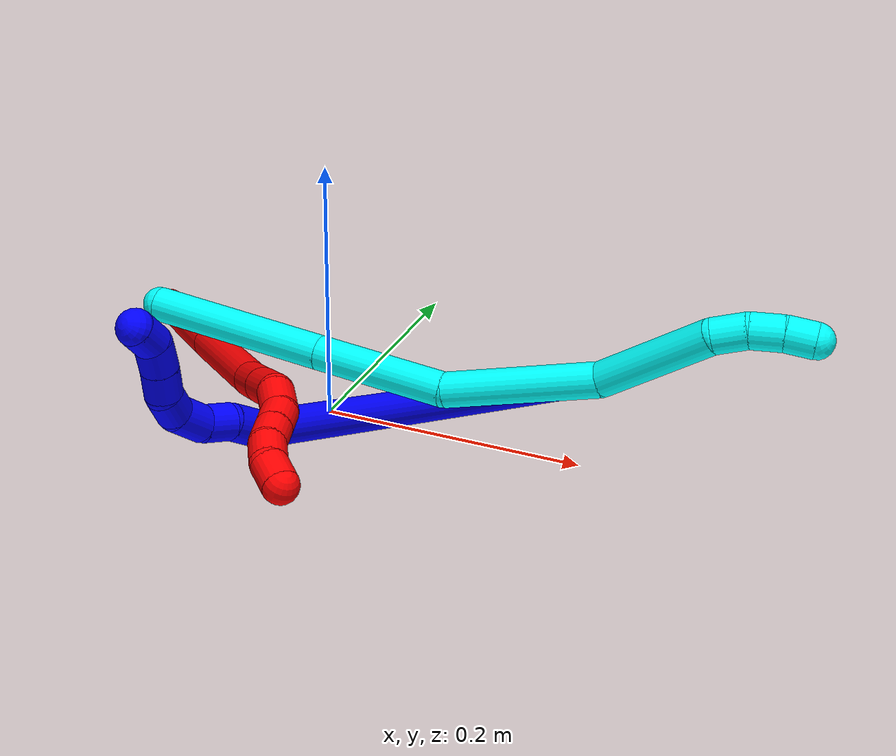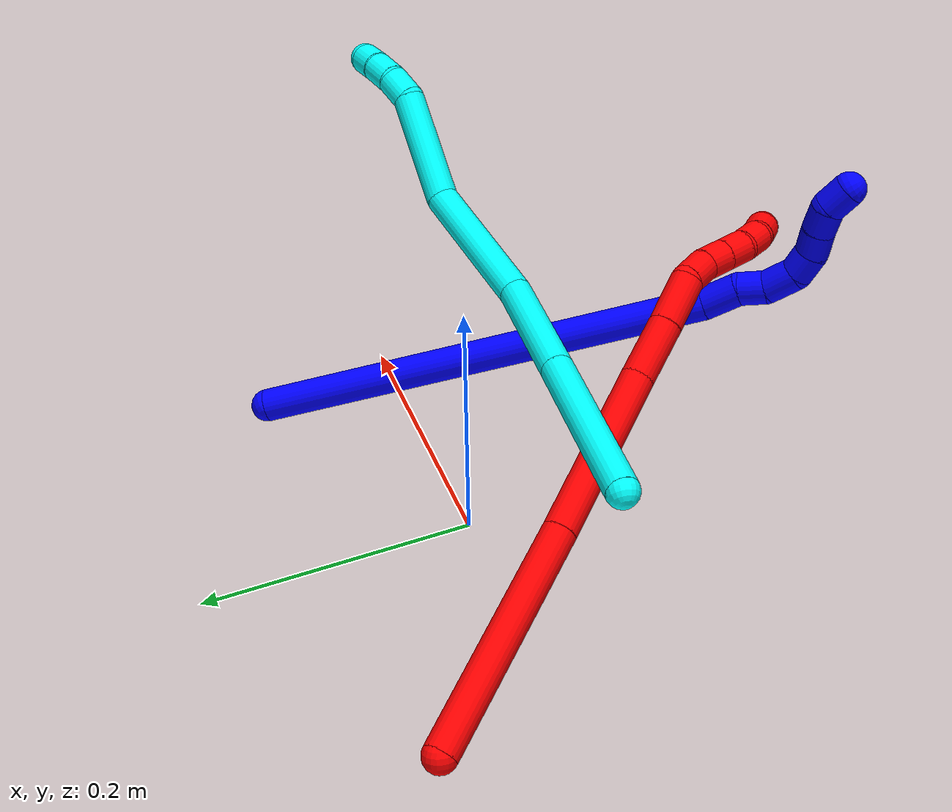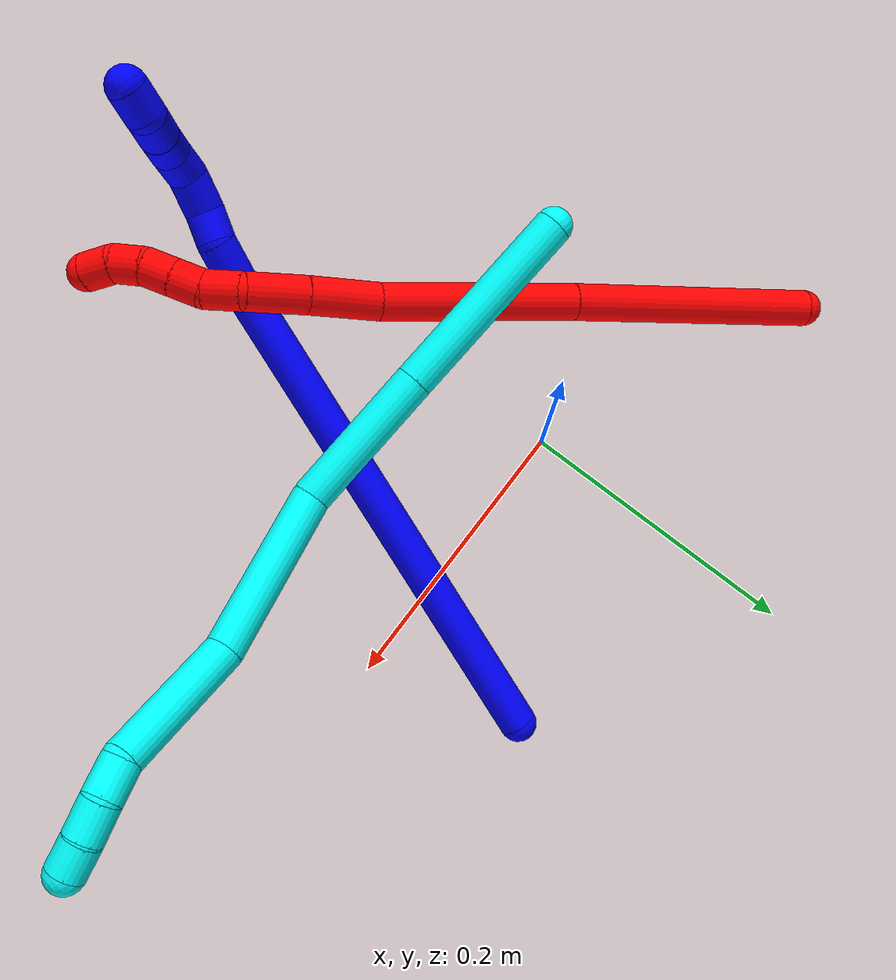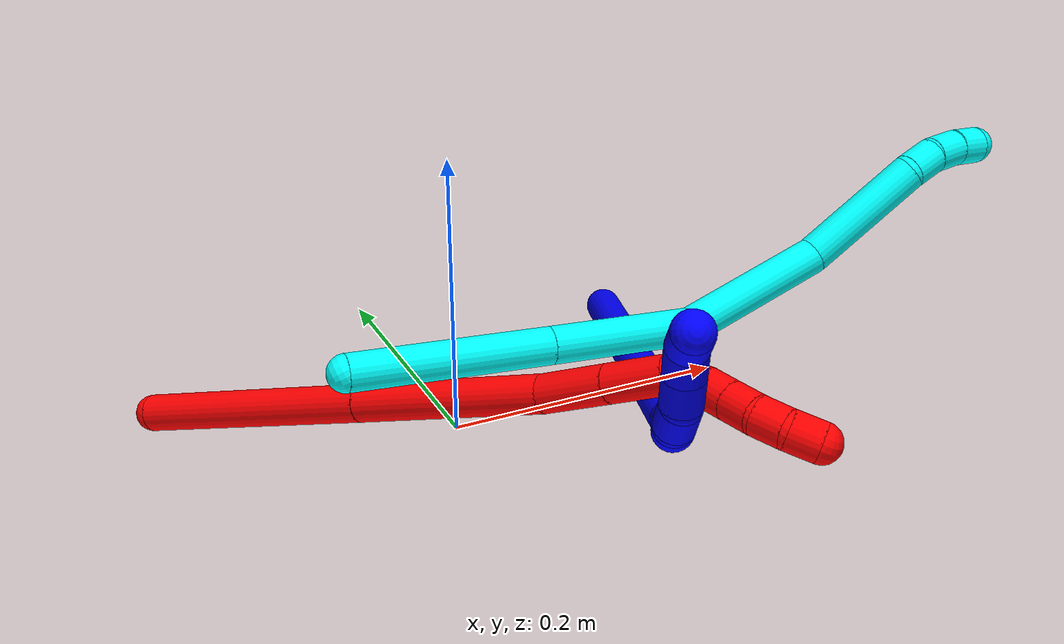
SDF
<sdf version="1.7">
 <world name="default">
  <plugin name="TubeGeneratorPlugin" filename="libtube_generator_plugin.so"/>
  <model name="photoneo_s_sensor">
   <static>1</static>
   <pose>0 0 2 1.57079 1.57079 3.14159</pose>
   <link name="link">
    <inertial><mass>0.1</mass></inertial>
    <sensor name="sensor" type="depth">
     <update_rate>30</update_rate>
     <camera>
      <horizontal_fov>1.22</horizontal_fov>
      <image><width>1920</width><height>1200</height><format>B8G8R8</format></image>
      <clip><near>0.1</near><far>4</far></clip>
      <depth_camera><output>points</output></depth_camera>
     </camera>
     <plugin name="camera_plugin" filename="libgazebo_ros_depth_camera.so">
      <baseline>0.2</baseline>
      <alwaysOn>1</alwaysOn>
      <updateRate>0.0</updateRate>
      <cameraName>camera_ir</cameraName>
      <imageTopicName>/camera/color/image_raw</imageTopicName>
      <cameraInfoTopicName>/camera/color/camera_info</cameraInfoTopicName>
      <depthImageTopicName>/camera/depth/image_raw</depthImageTopicName>
      <depthImageCameraInfoTopicName>/camera/depth/camera_info</depthImageCameraInfoTopicName>
      <pointCloudTopicName>/camera/depth/points</pointCloudTopicName>
      <frameName>fr_optical</frameName>
      <pointCloudCutoff>0.1</pointCloudCutoff>
      <pointCloudCutoffMax>2.0</pointCloudCutoffMax>
      <distortionK1>0</distortionK1>
      <distortionK2>0</distortionK2>
      <distortionK3>0</distortionK3>
      <distortionT1>0</distortionT1>
      <distortionT2>0</distortionT2>
      <CxPrime>0</CxPrime>
      <Cx>0</Cx>
      <Cy>0</Cy>
      <focalLength>0</focalLength>
      <hackBaseline>0</hackBaseline>
     </plugin>
    </sensor>
   </link>
  </model>
  <gravity>0 0 -9.8</gravity>
  <magnetic_field>6e-06 2.3e-05 -4.2e-05</magnetic_field>
  <atmosphere type="adiabatic"/>
  <physics name="default_physics" default="0" type="ode">
   <max_step_size>0.003</max_step_size>
   <real_time_factor>1</real_time_factor>
   <real_time_update_rate>1000</real_time_update_rate>
   <max_contacts>10000</max_contacts>
   <ode>
    <solver>
     <type>quick</type>
     <iters>100</iters>
     <sor>1.3</sor>
     <use_dynamic_moi_rescaling>0</use_dynamic_moi_rescaling>
    </solver>
    <constraints>
     <contact_max_correcting_vel>0</contact_max_correcting_vel>
     <contact_surface_layer>0.001</contact_surface_layer>
     <cfm>0</cfm>
     <erp>0.2</erp>
    </constraints>
   </ode>
  </physics>
  <scene><ambient>0.4 0.4 0.4 1</ambient><background>0.7 0.7 0.7 1</background><shadows>0</shadows></scene>
  <audio><device>default</device></audio>
  <spherical_coordinates>
   <surface_model>EARTH_WGS84</surface_model>
   <latitude_deg>0</latitude_deg>
   <longitude_deg>0</longitude_deg>
   <elevation>0</elevation>
   <heading_deg>0</heading_deg>
  </spherical_coordinates>
  <model name="bin">
   <static>1</static>
   <link name="bottom">
    <collision name="collision-bottom">
     <pose>0 0 -0.01 0 -0 0</pose>
     <geometry><box><size>0.8 0.6 0.02</size></box></geometry>
     <surface>
      <friction><ode><mu>100</mu><mu2>100</mu2></ode></friction>
      <contact><collide_bitmask>65535</collide_bitmask></contact>
     </surface>
    </collision>
   </link>
   <link name="west_wall">
    <collision name="collision-west_wall">
     <pose>-0.41 0 0.1 0 -0 0</pose>
     <geometry><box><size>0.02 0.6 0.2</size></box></geometry>
     <surface>
      <friction><ode><mu>100</mu><mu2>100</mu2></ode></friction>
      <contact><collide_bitmask>65535</collide_bitmask></contact>
     </surface>
    </collision>
   </link>
   <link name="east_wall">
    <collision name="collision-east_wall">
     <pose>0.41 0 0.1 0 -0 0</pose>
     <geometry><box><size>0.02 0.6 0.2</size></box></geometry>
     <surface>
      <friction><ode><mu>100</mu><mu2>100</mu2></ode></friction>
      <contact><collide_bitmask>65535</collide_bitmask></contact>
     </surface>
    </collision>
   </link>
   <link name="south_wall">
    <collision name="collision-south_wall">
     <pose>0 -0.31 0.1 0 -0 0</pose>
     <geometry><box><size>0.8 0.02 0.2</size></box></geometry>
     <surface>
      <friction><ode><mu>100</mu><mu2>100</mu2></ode></friction>
      <contact><collide_bitmask>65535</collide_bitmask></contact>
     </surface>
    </collision>
   </link>
   <link name="north_wall">
    <collision name="collision-north_wall">
     <pose>0 0.31 0.1 0 -0 0</pose>
     <geometry><box><size>0.8 0.02 0.2</size></box></geometry>
     <surface>
      <friction><ode><mu>100</mu><mu2>100</mu2></ode></friction>
      <contact><collide_bitmask>65535</collide_bitmask></contact>
     </surface>
    </collision>
   </link>
  </model>
  <model name="1">
   <static>0</static>
   <link name="1">
    <collision name="collision-cylinder-e_1_1_4">
     <pose>-0.015938 -0.052888 0.163803 0.312306 -0.092331 -0.014546</pose>
     <geometry><cylinder><radius>0.0125</radius><length>0.345732</length></cylinder></geometry>
     <surface>
      <friction><ode><mu>1.16</mu><mu2>1.16</mu2><slip1>0</slip1><slip2>0</slip2></ode></friction>
      <contact><ode><kp>1e+06</kp><kd>1</kd><max_vel>0</max_vel><min_depth>0.001</min_depth></ode></contact>
     </surface>
    </collision>
    <visual name="visual-cylinder-e_1_1_4">
     <pose>-0.015938 -0.052888 0.163803 0.312306 -0.092331 -0.014546</pose>
     <geometry><cylinder><radius>0.0125</radius><length>0.345732</length></cylinder></geometry>
     <material><ambient>0 0 1 1</ambient></material>
    </visual>
    <collision name="collision-cylinder-e_2_4_5">
     <pose>-0.033378 -0.106164 0.341908 0.027149 -0.104553 -0.001421</pose>
     <geometry><cylinder><radius>0.0125</radius><length>0.028771</length></cylinder></geometry>
     <surface>
      <friction><ode><mu>1.16</mu><mu2>1.16</mu2><slip1>0</slip1><slip2>0</slip2></ode></friction>
      <contact><ode><kp>1e+06</kp><kd>1</kd><max_vel>0</max_vel><min_depth>0.001</min_depth></ode></contact>
     </surface>
    </collision>
    <visual name="visual-cylinder-e_2_4_5">
     <pose>-0.033378 -0.106164 0.341908 0.027149 -0.104553 -0.001421</pose>
     <geometry><cylinder><radius>0.0125</radius><length>0.028771</length></cylinder></geometry>
     <material><ambient>0 0 1 1</ambient></material>
    </visual>
    <collision name="collision-cylinder-e_3_5_6">
     <pose>-0.038005 -0.109638 0.365513 0.320353 -0.308674 -0.050259</pose>
     <geometry><cylinder><radius>0.0125</radius><length>0.020576</length></cylinder></geometry>
     <surface>
      <friction><ode><mu>1.16</mu><mu2>1.16</mu2><slip1>0</slip1><slip2>0</slip2></ode></friction>
      <contact><ode><kp>1e+06</kp><kd>1</kd><max_vel>0</max_vel><min_depth>0.001</min_depth></ode></contact>
     </surface>
    </collision>
    <visual name="visual-cylinder-e_3_5_6">
     <pose>-0.038005 -0.109638 0.365513 0.320353 -0.308674 -0.050259</pose>
     <geometry><cylinder><radius>0.0125</radius><length>0.020576</length></cylinder></geometry>
     <material><ambient>0 0 1 1</ambient></material>
    </visual>
    <collision name="collision-cylinder-e_4_6_7">
     <pose>-0.042749 -0.111731 0.386951 -0.081725 -0.132221 0.005414</pose>
     <geometry><cylinder><radius>0.0125</radius><length>0.024567</length></cylinder></geometry>
     <surface>
      <friction><ode><mu>1.16</mu><mu2>1.16</mu2><slip1>0</slip1><slip2>0</slip2></ode></friction>
      <contact><ode><kp>1e+06</kp><kd>1</kd><max_vel>0</max_vel><min_depth>0.001</min_depth></ode></contact>
     </surface>
    </collision>
    <visual name="visual-cylinder-e_4_6_7">
     <pose>-0.042749 -0.111731 0.386951 -0.081725 -0.132221 0.005414</pose>
     <geometry><cylinder><radius>0.0125</radius><length>0.024567</length></cylinder></geometry>
     <material><ambient>0 0 1 1</ambient></material>
    </visual>
    <collision name="collision-cylinder-e_5_7_8">
     <pose>-0.04298 -0.106324 0.408077 -0.456311 0.137805 -0.032046</pose>
     <geometry><cylinder><radius>0.0125</radius><length>0.02022</length></cylinder></geometry>
     <surface>
      <friction><ode><mu>1.16</mu><mu2>1.16</mu2><slip1>0</slip1><slip2>0</slip2></ode></friction>
      <contact><ode><kp>1e+06</kp><kd>1</kd><max_vel>0</max_vel><min_depth>0.001</min_depth></ode></contact>
     </surface>
    </collision>
    <visual name="visual-cylinder-e_5_7_8">
     <pose>-0.04298 -0.106324 0.408077 -0.456311 0.137805 -0.032046</pose>
     <geometry><cylinder><radius>0.0125</radius><length>0.02022</length></cylinder></geometry>
     <material><ambient>0 0 1 1</ambient></material>
    </visual>
    <collision name="collision-cylinder-e_6_8_9">
     <pose>-0.040059 -0.094666 0.423818 -0.820737 0.153482 -0.066882</pose>
     <geometry><cylinder><radius>0.0125</radius><length>0.020043</length></cylinder></geometry>
     <surface>
      <friction><ode><mu>1.16</mu><mu2>1.16</mu2><slip1>0</slip1><slip2>0</slip2></ode></friction>
      <contact><ode><kp>1e+06</kp><kd>1</kd><max_vel>0</max_vel><min_depth>0.001</min_depth></ode></contact>
     </surface>
    </collision>
    <visual name="visual-cylinder-e_6_8_9">
     <pose>-0.040059 -0.094666 0.423818 -0.820737 0.153482 -0.066882</pose>
     <geometry><cylinder><radius>0.0125</radius><length>0.020043</length></cylinder></geometry>
     <material><ambient>0 0 1 1</ambient></material>
    </visual>
    <collision name="collision-cylinder-e_7_9_10">
     <pose>-0.037329 -0.080643 0.437836 -0.750412 0.11996 -0.047296</pose>
     <geometry><cylinder><radius>0.0125</radius><length>0.020017</length></cylinder></geometry>
     <surface>
      <friction><ode><mu>1.16</mu><mu2>1.16</mu2><slip1>0</slip1><slip2>0</slip2></ode></friction>
      <contact><ode><kp>1e+06</kp><kd>1</kd><max_vel>0</max_vel><min_depth>0.001</min_depth></ode></contact>
     </surface>
    </collision>
    <visual name="visual-cylinder-e_7_9_10">
     <pose>-0.037329 -0.080643 0.437836 -0.750412 0.11996 -0.047296</pose>
     <geometry><cylinder><radius>0.0125</radius><length>0.020017</length></cylinder></geometry>
     <material><ambient>0 0 1 1</ambient></material>
    </visual>
    <collision name="collision-cylinder-e_8_10_2">
     <pose>-0.035733 -0.071303 0.4548 -0.258547 0.039721 -0.005164</pose>
     <geometry><cylinder><radius>0.0125</radius><length>0.020074</length></cylinder></geometry>
     <surface>
      <friction><ode><mu>1.16</mu><mu2>1.16</mu2><slip1>0</slip1><slip2>0</slip2></ode></friction>
      <contact><ode><kp>1e+06</kp><kd>1</kd><max_vel>0</max_vel><min_depth>0.001</min_depth></ode></contact>
     </surface>
    </collision>
    <visual name="visual-cylinder-e_8_10_2">
     <pose>-0.035733 -0.071303 0.4548 -0.258547 0.039721 -0.005164</pose>
     <geometry><cylinder><radius>0.0125</radius><length>0.020074</length></cylinder></geometry>
     <material><ambient>0 0 1 1</ambient></material>
    </visual>
    <collision name="collision-sphere-2">
     <pose>-0.035334 -0.068739 0.464496 0 -0 0</pose>
     <geometry><sphere><radius>0.0125</radius></sphere></geometry>
     <surface>
      <friction><ode><mu>1.16</mu><mu2>1.16</mu2><slip1>0</slip1><slip2>0</slip2></ode></friction>
      <contact><ode><kp>1e+06</kp><kd>1</kd><max_vel>0</max_vel><min_depth>0.001</min_depth></ode></contact>
     </surface>
    </collision>
    <visual name="visual-sphere-2">
     <pose>-0.035334 -0.068739 0.464496 0 -0 0</pose>
     <geometry><sphere><radius>0.0125</radius></sphere></geometry>
     <material><ambient>0 0 1 1</ambient></material>
    </visual>
    <collision name="collision-sphere-10">
     <pose>-0.036131 -0.073867 0.445104 0 -0 0</pose>
     <geometry><sphere><radius>0.0125</radius></sphere></geometry>
     <surface>
      <friction><ode><mu>1.16</mu><mu2>1.16</mu2><slip1>0</slip1><slip2>0</slip2></ode></friction>
      <contact><ode><kp>1e+06</kp><kd>1</kd><max_vel>0</max_vel><min_depth>0.001</min_depth></ode></contact>
     </surface>
    </collision>
    <visual name="visual-sphere-10">
     <pose>-0.036131 -0.073867 0.445104 0 -0 0</pose>
     <geometry><sphere><radius>0.0125</radius></sphere></geometry>
     <material><ambient>0 0 1 1</ambient></material>
    </visual>
    <collision name="collision-sphere-9">
     <pose>-0.038527 -0.087419 0.430569 0 -0 0</pose>
     <geometry><sphere><radius>0.0125</radius></sphere></geometry>
     <surface>
      <friction><ode><mu>1.16</mu><mu2>1.16</mu2><slip1>0</slip1><slip2>0</slip2></ode></friction>
      <contact><ode><kp>1e+06</kp><kd>1</kd><max_vel>0</max_vel><min_depth>0.001</min_depth></ode></contact>
     </surface>
    </collision>
    <visual name="visual-sphere-9">
     <pose>-0.038527 -0.087419 0.430569 0 -0 0</pose>
     <geometry><sphere><radius>0.0125</radius></sphere></geometry>
     <material><ambient>0 0 1 1</ambient></material>
    </visual>
    <collision name="collision-sphere-4">
     <pose>-0.031877 -0.105775 0.327607 0 -0 0</pose>
     <geometry><sphere><radius>0.0125</radius></sphere></geometry>
     <surface>
      <friction><ode><mu>1.16</mu><mu2>1.16</mu2><slip1>0</slip1><slip2>0</slip2></ode></friction>
      <contact><ode><kp>1e+06</kp><kd>1</kd><max_vel>0</max_vel><min_depth>0.001</min_depth></ode></contact>
     </surface>
    </collision>
    <visual name="visual-sphere-4">
     <pose>-0.031877 -0.105775 0.327607 0 -0 0</pose>
     <geometry><sphere><radius>0.0125</radius></sphere></geometry>
     <material><ambient>0 0 1 1</ambient></material>
    </visual>
    <collision name="collision-sphere-1">
     <geometry><sphere><radius>0.0125</radius></sphere></geometry>
     <surface>
      <friction><ode><mu>1.16</mu><mu2>1.16</mu2><slip1>0</slip1><slip2>0</slip2></ode></friction>
      <contact><ode><kp>1e+06</kp><kd>1</kd><max_vel>0</max_vel><min_depth>0.001</min_depth></ode></contact>
     </surface>
    </collision>
    <visual name="visual-sphere-1">
     <geometry><sphere><radius>0.0125</radius></sphere></geometry>
     <material><ambient>0 0 1 1</ambient></material>
    </visual>
    <collision name="collision-sphere-8">
     <pose>-0.041591 -0.101912 0.417066 0 -0 0</pose>
     <geometry><sphere><radius>0.0125</radius></sphere></geometry>
     <surface>
      <friction><ode><mu>1.16</mu><mu2>1.16</mu2><slip1>0</slip1><slip2>0</slip2></ode></friction>
      <contact><ode><kp>1e+06</kp><kd>1</kd><max_vel>0</max_vel><min_depth>0.001</min_depth></ode></contact>
     </surface>
    </collision>
    <visual name="visual-sphere-8">
     <pose>-0.041591 -0.101912 0.417066 0 -0 0</pose>
     <geometry><sphere><radius>0.0125</radius></sphere></geometry>
     <material><ambient>0 0 1 1</ambient></material>
    </visual>
    <collision name="collision-sphere-5">
     <pose>-0.034879 -0.106552 0.35621 0 -0 0</pose>
     <geometry><sphere><radius>0.0125</radius></sphere></geometry>
     <surface>
      <friction><ode><mu>1.16</mu><mu2>1.16</mu2><slip1>0</slip1><slip2>0</slip2></ode></friction>
      <contact><ode><kp>1e+06</kp><kd>1</kd><max_vel>0</max_vel><min_depth>0.001</min_depth></ode></contact>
     </surface>
    </collision>
    <visual name="visual-sphere-5">
     <pose>-0.034879 -0.106552 0.35621 0 -0 0</pose>
     <geometry><sphere><radius>0.0125</radius></sphere></geometry>
     <material><ambient>0 0 1 1</ambient></material>
    </visual>
    <collision name="collision-sphere-6">
     <pose>-0.04113 -0.112725 0.374816 0 -0 0</pose>
     <geometry><sphere><radius>0.0125</radius></sphere></geometry>
     <surface>
      <friction><ode><mu>1.16</mu><mu2>1.16</mu2><slip1>0</slip1><slip2>0</slip2></ode></friction>
      <contact><ode><kp>1e+06</kp><kd>1</kd><max_vel>0</max_vel><min_depth>0.001</min_depth></ode></contact>
     </surface>
    </collision>
    <visual name="visual-sphere-6">
     <pose>-0.04113 -0.112725 0.374816 0 -0 0</pose>
     <geometry><sphere><radius>0.0125</radius></sphere></geometry>
     <material><ambient>0 0 1 1</ambient></material>
    </visual>
    <collision name="collision-sphere-7">
     <pose>-0.044369 -0.110737 0.399087 0 -0 0</pose>
     <geometry><sphere><radius>0.0125</radius></sphere></geometry>
     <surface>
      <friction><ode><mu>1.16</mu><mu2>1.16</mu2><slip1>0</slip1><slip2>0</slip2></ode></friction>
      <contact><ode><kp>1e+06</kp><kd>1</kd><max_vel>0</max_vel><min_depth>0.001</min_depth></ode></contact>
     </surface>
    </collision>
    <visual name="visual-sphere-7">
     <pose>-0.044369 -0.110737 0.399087 0 -0 0</pose>
     <geometry><sphere><radius>0.0125</radius></sphere></geometry>
     <material><ambient>0 0 1 1</ambient></material>
    </visual>
    <inertial>
     <pose>-0.022879 -0.066866 0.236272 0 -0 0</pose>
     <mass>0.5</mass>
     <inertia>
      <ixx>0.003402</ixx>
      <ixy>0</ixy>
      <ixz>0</ixz>
      <iyy>0.003247</iyy>
      <iyz>0</iyz>
      <izz>0.001411</izz>
     </inertia>
    </inertial>
   </link>
   <pose>0.166287 0.103821 0.011573 0.967285 -0.138672 -0.212397</pose>
  </model>
  <model name="2">
   <static>0</static>
   <link name="2">
    <collision name="collision-cylinder-e_1_1_4">
     <pose>0.048285 -0.051194 0.050726 0.78999 0.590288 0.252154</pose>
     <geometry><cylinder><radius>0.0125</radius><length>0.173499</length></cylinder></geometry>
     <surface>
      <friction><ode><mu>1.16</mu><mu2>1.16</mu2><slip1>0</slip1><slip2>0</slip2></ode></friction>
      <contact><ode><kp>1e+06</kp><kd>1</kd><max_vel>0</max_vel><min_depth>0.001</min_depth></ode></contact>
     </surface>
    </collision>
    <visual name="visual-cylinder-e_1_1_4">
     <pose>0.048285 -0.051194 0.050726 0.78999 0.590288 0.252154</pose>
     <geometry><cylinder><radius>0.0125</radius><length>0.173499</length></cylinder></geometry>
     <material><ambient>1 0 0 1</ambient></material>
    </visual>
    <collision name="collision-cylinder-e_2_4_5">
     <pose>0.134866 -0.140759 0.140558 0.775907 0.610072 0.25594</pose>
     <geometry><cylinder><radius>0.0125</radius><length>0.133688</length></cylinder></geometry>
     <surface>
      <friction><ode><mu>1.16</mu><mu2>1.16</mu2><slip1>0</slip1><slip2>0</slip2></ode></friction>
      <contact><ode><kp>1e+06</kp><kd>1</kd><max_vel>0</max_vel><min_depth>0.001</min_depth></ode></contact>
     </surface>
    </collision>
    <visual name="visual-cylinder-e_2_4_5">
     <pose>0.134866 -0.140759 0.140558 0.775907 0.610072 0.25594</pose>
     <geometry><cylinder><radius>0.0125</radius><length>0.133688</length></cylinder></geometry>
     <material><ambient>1 0 0 1</ambient></material>
    </visual>
    <collision name="collision-cylinder-e_3_5_6">
     <pose>0.184245 -0.193048 0.195349 0.725802 0.486143 0.187768</pose>
     <geometry><cylinder><radius>0.0125</radius><length>0.047438</length></cylinder></geometry>
     <surface>
      <friction><ode><mu>1.16</mu><mu2>1.16</mu2><slip1>0</slip1><slip2>0</slip2></ode></friction>
      <contact><ode><kp>1e+06</kp><kd>1</kd><max_vel>0</max_vel><min_depth>0.001</min_depth></ode></contact>
     </surface>
    </collision>
    <visual name="visual-cylinder-e_3_5_6">
     <pose>0.184245 -0.193048 0.195349 0.725802 0.486143 0.187768</pose>
     <geometry><cylinder><radius>0.0125</radius><length>0.047438</length></cylinder></geometry>
     <material><ambient>1 0 0 1</ambient></material>
    </visual>
    <collision name="collision-cylinder-e_4_6_7">
     <pose>0.20529 -0.21846 0.224381 0.710933 0.514816 0.194835</pose>
     <geometry><cylinder><radius>0.0125</radius><length>0.040471</length></cylinder></geometry>
     <surface>
      <friction><ode><mu>1.16</mu><mu2>1.16</mu2><slip1>0</slip1><slip2>0</slip2></ode></friction>
      <contact><ode><kp>1e+06</kp><kd>1</kd><max_vel>0</max_vel><min_depth>0.001</min_depth></ode></contact>
     </surface>
    </collision>
    <visual name="visual-cylinder-e_4_6_7">
     <pose>0.20529 -0.21846 0.224381 0.710933 0.514816 0.194835</pose>
     <geometry><cylinder><radius>0.0125</radius><length>0.040471</length></cylinder></geometry>
     <material><ambient>1 0 0 1</ambient></material>
    </visual>
    <collision name="collision-cylinder-e_5_7_8">
     <pose>0.223242 -0.238786 0.240954 1.22052 0.704198 0.502984</pose>
     <geometry><cylinder><radius>0.0125</radius><length>0.024677</length></cylinder></geometry>
     <surface>
      <friction><ode><mu>1.16</mu><mu2>1.16</mu2><slip1>0</slip1><slip2>0</slip2></ode></friction>
      <contact><ode><kp>1e+06</kp><kd>1</kd><max_vel>0</max_vel><min_depth>0.001</min_depth></ode></contact>
     </surface>
    </collision>
    <visual name="visual-cylinder-e_5_7_8">
     <pose>0.223242 -0.238786 0.240954 1.22052 0.704198 0.502984</pose>
     <geometry><cylinder><radius>0.0125</radius><length>0.024677</length></cylinder></geometry>
     <material><ambient>1 0 0 1</ambient></material>
    </visual>
    <collision name="collision-cylinder-e_6_8_9">
     <pose>0.235229 -0.256589 0.246135 1.35632 0.410812 0.332592</pose>
     <geometry><cylinder><radius>0.0125</radius><length>0.020028</length></cylinder></geometry>
     <surface>
      <friction><ode><mu>1.16</mu><mu2>1.16</mu2><slip1>0</slip1><slip2>0</slip2></ode></friction>
      <contact><ode><kp>1e+06</kp><kd>1</kd><max_vel>0</max_vel><min_depth>0.001</min_depth></ode></contact>
     </surface>
    </collision>
    <visual name="visual-cylinder-e_6_8_9">
     <pose>0.235229 -0.256589 0.246135 1.35632 0.410812 0.332592</pose>
     <geometry><cylinder><radius>0.0125</radius><length>0.020028</length></cylinder></geometry>
     <material><ambient>1 0 0 1</ambient></material>
    </visual>
    <collision name="collision-cylinder-e_7_9_10">
     <pose>0.243247 -0.27457 0.250127 1.34834 0.410333 0.329545</pose>
     <geometry><cylinder><radius>0.0125</radius><length>0.020149</length></cylinder></geometry>
     <surface>
      <friction><ode><mu>1.16</mu><mu2>1.16</mu2><slip1>0</slip1><slip2>0</slip2></ode></friction>
      <contact><ode><kp>1e+06</kp><kd>1</kd><max_vel>0</max_vel><min_depth>0.001</min_depth></ode></contact>
     </surface>
    </collision>
    <visual name="visual-cylinder-e_7_9_10">
     <pose>0.243247 -0.27457 0.250127 1.34834 0.410333 0.329545</pose>
     <geometry><cylinder><radius>0.0125</radius><length>0.020149</length></cylinder></geometry>
     <material><ambient>1 0 0 1</ambient></material>
    </visual>
    <collision name="collision-cylinder-e_8_10_11">
     <pose>0.253525 -0.291172 0.254058 1.32646 0.674742 0.534993</pose>
     <geometry><cylinder><radius>0.0125</radius><length>0.020039</length></cylinder></geometry>
     <surface>
      <friction><ode><mu>1.16</mu><mu2>1.16</mu2><slip1>0</slip1><slip2>0</slip2></ode></friction>
      <contact><ode><kp>1e+06</kp><kd>1</kd><max_vel>0</max_vel><min_depth>0.001</min_depth></ode></contact>
     </surface>
    </collision>
    <visual name="visual-cylinder-e_8_10_11">
     <pose>0.253525 -0.291172 0.254058 1.32646 0.674742 0.534993</pose>
     <geometry><cylinder><radius>0.0125</radius><length>0.020039</length></cylinder></geometry>
     <material><ambient>1 0 0 1</ambient></material>
    </visual>
    <collision name="collision-cylinder-e_9_11_2">
     <pose>0.268414 -0.303701 0.257072 1.34751 1.04017 0.857671</pose>
     <geometry><cylinder><radius>0.0125</radius><length>0.020011</length></cylinder></geometry>
     <surface>
      <friction><ode><mu>1.16</mu><mu2>1.16</mu2><slip1>0</slip1><slip2>0</slip2></ode></friction>
      <contact><ode><kp>1e+06</kp><kd>1</kd><max_vel>0</max_vel><min_depth>0.001</min_depth></ode></contact>
     </surface>
    </collision>
    <visual name="visual-cylinder-e_9_11_2">
     <pose>0.268414 -0.303701 0.257072 1.34751 1.04017 0.857671</pose>
     <geometry><cylinder><radius>0.0125</radius><length>0.020011</length></cylinder></geometry>
     <material><ambient>1 0 0 1</ambient></material>
    </visual>
    <collision name="collision-sphere-2">
     <pose>0.277044 -0.308639 0.258193 0 -0 0</pose>
     <geometry><sphere><radius>0.0125</radius></sphere></geometry>
     <surface>
      <friction><ode><mu>1.16</mu><mu2>1.16</mu2><slip1>0</slip1><slip2>0</slip2></ode></friction>
      <contact><ode><kp>1e+06</kp><kd>1</kd><max_vel>0</max_vel><min_depth>0.001</min_depth></ode></contact>
     </surface>
    </collision>
    <visual name="visual-sphere-2">
     <pose>0.277044 -0.308639 0.258193 0 -0 0</pose>
     <geometry><sphere><radius>0.0125</radius></sphere></geometry>
     <material><ambient>1 0 0 1</ambient></material>
    </visual>
    <collision name="collision-sphere-11">
     <pose>0.259784 -0.298764 0.255951 0 -0 0</pose>
     <geometry><sphere><radius>0.0125</radius></sphere></geometry>
     <surface>
      <friction><ode><mu>1.16</mu><mu2>1.16</mu2><slip1>0</slip1><slip2>0</slip2></ode></friction>
      <contact><ode><kp>1e+06</kp><kd>1</kd><max_vel>0</max_vel><min_depth>0.001</min_depth></ode></contact>
     </surface>
    </collision>
    <visual name="visual-sphere-11">
     <pose>0.259784 -0.298764 0.255951 0 -0 0</pose>
     <geometry><sphere><radius>0.0125</radius></sphere></geometry>
     <material><ambient>1 0 0 1</ambient></material>
    </visual>
    <collision name="collision-sphere-10">
     <pose>0.247266 -0.283581 0.252165 0 -0 0</pose>
     <geometry><sphere><radius>0.0125</radius></sphere></geometry>
     <surface>
      <friction><ode><mu>1.16</mu><mu2>1.16</mu2><slip1>0</slip1><slip2>0</slip2></ode></friction>
      <contact><ode><kp>1e+06</kp><kd>1</kd><max_vel>0</max_vel><min_depth>0.001</min_depth></ode></contact>
     </surface>
    </collision>
    <visual name="visual-sphere-10">
     <pose>0.247266 -0.283581 0.252165 0 -0 0</pose>
     <geometry><sphere><radius>0.0125</radius></sphere></geometry>
     <material><ambient>1 0 0 1</ambient></material>
    </visual>
    <collision name="collision-sphere-9">
     <pose>0.239228 -0.265559 0.248089 0 -0 0</pose>
     <geometry><sphere><radius>0.0125</radius></sphere></geometry>
     <surface>
      <friction><ode><mu>1.16</mu><mu2>1.16</mu2><slip1>0</slip1><slip2>0</slip2></ode></friction>
      <contact><ode><kp>1e+06</kp><kd>1</kd><max_vel>0</max_vel><min_depth>0.001</min_depth></ode></contact>
     </surface>
    </collision>
    <visual name="visual-sphere-9">
     <pose>0.239228 -0.265559 0.248089 0 -0 0</pose>
     <geometry><sphere><radius>0.0125</radius></sphere></geometry>
     <material><ambient>1 0 0 1</ambient></material>
    </visual>
    <collision name="collision-sphere-4">
     <pose>0.09657 -0.102389 0.101453 0 -0 0</pose>
     <geometry><sphere><radius>0.0125</radius></sphere></geometry>
     <surface>
      <friction><ode><mu>1.16</mu><mu2>1.16</mu2><slip1>0</slip1><slip2>0</slip2></ode></friction>
      <contact><ode><kp>1e+06</kp><kd>1</kd><max_vel>0</max_vel><min_depth>0.001</min_depth></ode></contact>
     </surface>
    </collision>
    <visual name="visual-sphere-4">
     <pose>0.09657 -0.102389 0.101453 0 -0 0</pose>
     <geometry><sphere><radius>0.0125</radius></sphere></geometry>
     <material><ambient>1 0 0 1</ambient></material>
    </visual>
    <collision name="collision-sphere-1">
     <geometry><sphere><radius>0.0125</radius></sphere></geometry>
     <surface>
      <friction><ode><mu>1.16</mu><mu2>1.16</mu2><slip1>0</slip1><slip2>0</slip2></ode></friction>
      <contact><ode><kp>1e+06</kp><kd>1</kd><max_vel>0</max_vel><min_depth>0.001</min_depth></ode></contact>
     </surface>
    </collision>
    <visual name="visual-sphere-1">
     <geometry><sphere><radius>0.0125</radius></sphere></geometry>
     <material><ambient>1 0 0 1</ambient></material>
    </visual>
    <collision name="collision-sphere-8">
     <pose>0.23123 -0.247618 0.244181 0 -0 0</pose>
     <geometry><sphere><radius>0.0125</radius></sphere></geometry>
     <surface>
      <friction><ode><mu>1.16</mu><mu2>1.16</mu2><slip1>0</slip1><slip2>0</slip2></ode></friction>
      <contact><ode><kp>1e+06</kp><kd>1</kd><max_vel>0</max_vel><min_depth>0.001</min_depth></ode></contact>
     </surface>
    </collision>
    <visual name="visual-sphere-8">
     <pose>0.23123 -0.247618 0.244181 0 -0 0</pose>
     <geometry><sphere><radius>0.0125</radius></sphere></geometry>
     <material><ambient>1 0 0 1</ambient></material>
    </visual>
    <collision name="collision-sphere-5">
     <pose>0.173163 -0.179129 0.179663 0 -0 0</pose>
     <geometry><sphere><radius>0.0125</radius></sphere></geometry>
     <surface>
      <friction><ode><mu>1.16</mu><mu2>1.16</mu2><slip1>0</slip1><slip2>0</slip2></ode></friction>
      <contact><ode><kp>1e+06</kp><kd>1</kd><max_vel>0</max_vel><min_depth>0.001</min_depth></ode></contact>
     </surface>
    </collision>
    <visual name="visual-sphere-5">
     <pose>0.173163 -0.179129 0.179663 0 -0 0</pose>
     <geometry><sphere><radius>0.0125</radius></sphere></geometry>
     <material><ambient>1 0 0 1</ambient></material>
    </visual>
    <collision name="collision-sphere-6">
     <pose>0.195327 -0.206967 0.211035 0 -0 0</pose>
     <geometry><sphere><radius>0.0125</radius></sphere></geometry>
     <surface>
      <friction><ode><mu>1.16</mu><mu2>1.16</mu2><slip1>0</slip1><slip2>0</slip2></ode></friction>
      <contact><ode><kp>1e+06</kp><kd>1</kd><max_vel>0</max_vel><min_depth>0.001</min_depth></ode></contact>
     </surface>
    </collision>
    <visual name="visual-sphere-6">
     <pose>0.195327 -0.206967 0.211035 0 -0 0</pose>
     <geometry><sphere><radius>0.0125</radius></sphere></geometry>
     <material><ambient>1 0 0 1</ambient></material>
    </visual>
    <collision name="collision-sphere-7">
     <pose>0.215254 -0.229953 0.237727 0 -0 0</pose>
     <geometry><sphere><radius>0.0125</radius></sphere></geometry>
     <surface>
      <friction><ode><mu>1.16</mu><mu2>1.16</mu2><slip1>0</slip1><slip2>0</slip2></ode></friction>
      <contact><ode><kp>1e+06</kp><kd>1</kd><max_vel>0</max_vel><min_depth>0.001</min_depth></ode></contact>
     </surface>
    </collision>
    <visual name="visual-sphere-7">
     <pose>0.215254 -0.229953 0.237727 0 -0 0</pose>
     <geometry><sphere><radius>0.0125</radius></sphere></geometry>
     <material><ambient>1 0 0 1</ambient></material>
    </visual>
    <inertial>
     <pose>0.138058 -0.14835 0.144181 0 -0 0</pose>
     <mass>0.5</mass>
     <inertia><ixx>0.0007</ixx><ixy>0</ixy><ixz>0</ixz><iyy>0.000641</iyy><iyz>0</iyz><izz>3.8e-05</izz></inertia>
    </inertial>
   </link>
   <pose>-0.187882 0.090592 0.012057 0.037308 0.440283 -0.177431</pose>
  </model>
  <model name="3">
   <static>0</static>
   <link name="3">
    <collision name="collision-cylinder-e_1_1_4">
     <pose>0.0269 -0.011906 0.060354 0.194767 0.412228 0.040846</pose>
     <geometry><cylinder><radius>0.0125</radius><length>0.134283</length></cylinder></geometry>
     <surface>
      <friction><ode><mu>1.16</mu><mu2>1.16</mu2><slip1>0</slip1><slip2>0</slip2></ode></friction>
      <contact><ode><kp>1e+06</kp><kd>1</kd><max_vel>0</max_vel><min_depth>0.001</min_depth></ode></contact>
     </surface>
    </collision>
    <visual name="visual-cylinder-e_1_1_4">
     <pose>0.0269 -0.011906 0.060354 0.194767 0.412228 0.040846</pose>
     <geometry><cylinder><radius>0.0125</radius><length>0.134283</length></cylinder></geometry>
     <material><ambient>0.003922 1 0.996078 1</ambient></material>
    </visual>
    <collision name="collision-cylinder-e_2_4_5">
     <pose>0.073626 -0.032251 0.164746 0.189333 0.41629 0.040102</pose>
     <geometry><cylinder><radius>0.0125</radius><length>0.098054</length></cylinder></geometry>
     <surface>
      <friction><ode><mu>1.16</mu><mu2>1.16</mu2><slip1>0</slip1><slip2>0</slip2></ode></friction>
      <contact><ode><kp>1e+06</kp><kd>1</kd><max_vel>0</max_vel><min_depth>0.001</min_depth></ode></contact>
     </surface>
    </collision>
    <visual name="visual-cylinder-e_2_4_5">
     <pose>0.073626 -0.032251 0.164746 0.189333 0.41629 0.040102</pose>
     <geometry><cylinder><radius>0.0125</radius><length>0.098054</length></cylinder></geometry>
     <material><ambient>0.003922 1 0.996078 1</ambient></material>
    </visual>
    <collision name="collision-cylinder-e_3_5_6">
     <pose>0.112498 -0.031159 0.259462 -0.185891 0.35383 -0.033327</pose>
     <geometry><cylinder><radius>0.0125</radius><length>0.109941</length></cylinder></geometry>
     <surface>
      <friction><ode><mu>1.16</mu><mu2>1.16</mu2><slip1>0</slip1><slip2>0</slip2></ode></friction>
      <contact><ode><kp>1e+06</kp><kd>1</kd><max_vel>0</max_vel><min_depth>0.001</min_depth></ode></contact>
     </surface>
    </collision>
    <visual name="visual-cylinder-e_3_5_6">
     <pose>0.112498 -0.031159 0.259462 -0.185891 0.35383 -0.033327</pose>
     <geometry><cylinder><radius>0.0125</radius><length>0.109941</length></cylinder></geometry>
     <material><ambient>0.003922 1 0.996078 1</ambient></material>
    </visual>
    <collision name="collision-cylinder-e_4_6_7">
     <pose>0.128997 -0.011324 0.353577 -0.232914 -0.056994 0.006669</pose>
     <geometry><cylinder><radius>0.0125</radius><length>0.089433</length></cylinder></geometry>
     <surface>
      <friction><ode><mu>1.16</mu><mu2>1.16</mu2><slip1>0</slip1><slip2>0</slip2></ode></friction>
      <contact><ode><kp>1e+06</kp><kd>1</kd><max_vel>0</max_vel><min_depth>0.001</min_depth></ode></contact>
     </surface>
    </collision>
    <visual name="visual-cylinder-e_4_6_7">
     <pose>0.128997 -0.011324 0.353577 -0.232914 -0.056994 0.006669</pose>
     <geometry><cylinder><radius>0.0125</radius><length>0.089433</length></cylinder></geometry>
     <material><ambient>0.003922 1 0.996078 1</ambient></material>
    </visual>
    <collision name="collision-cylinder-e_5_7_8">
     <pose>0.13039 0.0021 0.407941 -0.278153 0.333793 -0.047154</pose>
     <geometry><cylinder><radius>0.0125</radius><length>0.024053</length></cylinder></geometry>
     <surface>
      <friction><ode><mu>1.16</mu><mu2>1.16</mu2><slip1>0</slip1><slip2>0</slip2></ode></friction>
      <contact><ode><kp>1e+06</kp><kd>1</kd><max_vel>0</max_vel><min_depth>0.001</min_depth></ode></contact>
     </surface>
    </collision>
    <visual name="visual-cylinder-e_5_7_8">
     <pose>0.13039 0.0021 0.407941 -0.278153 0.333793 -0.047154</pose>
     <geometry><cylinder><radius>0.0125</radius><length>0.024053</length></cylinder></geometry>
     <material><ambient>0.003922 1 0.996078 1</ambient></material>
    </visual>
    <collision name="collision-cylinder-e_6_8_9">
     <pose>0.140424 0.006428 0.428843 -0.120467 0.545142 -0.033711</pose>
     <geometry><cylinder><radius>0.0125</radius><length>0.023502</length></cylinder></geometry>
     <surface>
      <friction><ode><mu>1.16</mu><mu2>1.16</mu2><slip1>0</slip1><slip2>0</slip2></ode></friction>
      <contact><ode><kp>1e+06</kp><kd>1</kd><max_vel>0</max_vel><min_depth>0.001</min_depth></ode></contact>
     </surface>
    </collision>
    <visual name="visual-cylinder-e_6_8_9">
     <pose>0.140424 0.006428 0.428843 -0.120467 0.545142 -0.033711</pose>
     <geometry><cylinder><radius>0.0125</radius><length>0.023502</length></cylinder></geometry>
     <material><ambient>0.003922 1 0.996078 1</ambient></material>
    </visual>
    <collision name="collision-cylinder-e_7_9_2">
     <pose>0.152581 0.007406 0.447224 0.027208 0.624685 0.008786</pose>
     <geometry><cylinder><radius>0.0125</radius><length>0.020734</length></cylinder></geometry>
     <surface>
      <friction><ode><mu>1.16</mu><mu2>1.16</mu2><slip1>0</slip1><slip2>0</slip2></ode></friction>
      <contact><ode><kp>1e+06</kp><kd>1</kd><max_vel>0</max_vel><min_depth>0.001</min_depth></ode></contact>
     </surface>
    </collision>
    <visual name="visual-cylinder-e_7_9_2">
     <pose>0.152581 0.007406 0.447224 0.027208 0.624685 0.008786</pose>
     <geometry><cylinder><radius>0.0125</radius><length>0.020734</length></cylinder></geometry>
     <material><ambient>0.003922 1 0.996078 1</ambient></material>
    </visual>
    <collision name="collision-sphere-2">
     <pose>0.158644 0.007177 0.45563 0 -0 0</pose>
     <geometry><sphere><radius>0.0125</radius></sphere></geometry>
     <surface>
      <friction><ode><mu>1.16</mu><mu2>1.16</mu2><slip1>0</slip1><slip2>0</slip2></ode></friction>
      <contact><ode><kp>1e+06</kp><kd>1</kd><max_vel>0</max_vel><min_depth>0.001</min_depth></ode></contact>
     </surface>
    </collision>
    <visual name="visual-sphere-2">
     <pose>0.158644 0.007177 0.45563 0 -0 0</pose>
     <geometry><sphere><radius>0.0125</radius></sphere></geometry>
     <material><ambient>0.003922 1 0.996078 1</ambient></material>
    </visual>
    <collision name="collision-sphere-9">
     <pose>0.146518 0.007635 0.438818 0 -0 0</pose>
     <geometry><sphere><radius>0.0125</radius></sphere></geometry>
     <surface>
      <friction><ode><mu>1.16</mu><mu2>1.16</mu2><slip1>0</slip1><slip2>0</slip2></ode></friction>
      <contact><ode><kp>1e+06</kp><kd>1</kd><max_vel>0</max_vel><min_depth>0.001</min_depth></ode></contact>
     </surface>
    </collision>
    <visual name="visual-sphere-9">
     <pose>0.146518 0.007635 0.438818 0 -0 0</pose>
     <geometry><sphere><radius>0.0125</radius></sphere></geometry>
     <material><ambient>0.003922 1 0.996078 1</ambient></material>
    </visual>
    <collision name="collision-sphere-4">
     <pose>0.053801 -0.023812 0.120708 0 -0 0</pose>
     <geometry><sphere><radius>0.0125</radius></sphere></geometry>
     <surface>
      <friction><ode><mu>1.16</mu><mu2>1.16</mu2><slip1>0</slip1><slip2>0</slip2></ode></friction>
      <contact><ode><kp>1e+06</kp><kd>1</kd><max_vel>0</max_vel><min_depth>0.001</min_depth></ode></contact>
     </surface>
    </collision>
    <visual name="visual-sphere-4">
     <pose>0.053801 -0.023812 0.120708 0 -0 0</pose>
     <geometry><sphere><radius>0.0125</radius></sphere></geometry>
     <material><ambient>0.003922 1 0.996078 1</ambient></material>
    </visual>
    <collision name="collision-sphere-1">
     <geometry><sphere><radius>0.0125</radius></sphere></geometry>
     <surface>
      <friction><ode><mu>1.16</mu><mu2>1.16</mu2><slip1>0</slip1><slip2>0</slip2></ode></friction>
      <contact><ode><kp>1e+06</kp><kd>1</kd><max_vel>0</max_vel><min_depth>0.001</min_depth></ode></contact>
     </surface>
    </collision>
    <visual name="visual-sphere-1">
     <geometry><sphere><radius>0.0125</radius></sphere></geometry>
     <material><ambient>0.003922 1 0.996078 1</ambient></material>
    </visual>
    <collision name="collision-sphere-8">
     <pose>0.134331 0.00522 0.418868 0 -0 0</pose>
     <geometry><sphere><radius>0.0125</radius></sphere></geometry>
     <surface>
      <friction><ode><mu>1.16</mu><mu2>1.16</mu2><slip1>0</slip1><slip2>0</slip2></ode></friction>
      <contact><ode><kp>1e+06</kp><kd>1</kd><max_vel>0</max_vel><min_depth>0.001</min_depth></ode></contact>
     </surface>
    </collision>
    <visual name="visual-sphere-8">
     <pose>0.134331 0.00522 0.418868 0 -0 0</pose>
     <geometry><sphere><radius>0.0125</radius></sphere></geometry>
     <material><ambient>0.003922 1 0.996078 1</ambient></material>
    </visual>
    <collision name="collision-sphere-5">
     <pose>0.093451 -0.04069 0.208785 0 -0 0</pose>
     <geometry><sphere><radius>0.0125</radius></sphere></geometry>
     <surface>
      <friction><ode><mu>1.16</mu><mu2>1.16</mu2><slip1>0</slip1><slip2>0</slip2></ode></friction>
      <contact><ode><kp>1e+06</kp><kd>1</kd><max_vel>0</max_vel><min_depth>0.001</min_depth></ode></contact>
     </surface>
    </collision>
    <visual name="visual-sphere-5">
     <pose>0.093451 -0.04069 0.208785 0 -0 0</pose>
     <geometry><sphere><radius>0.0125</radius></sphere></geometry>
     <material><ambient>0.003922 1 0.996078 1</ambient></material>
    </visual>
    <collision name="collision-sphere-6">
     <pose>0.131545 -0.021629 0.310139 0 -0 0</pose>
     <geometry><sphere><radius>0.0125</radius></sphere></geometry>
     <surface>
      <friction><ode><mu>1.16</mu><mu2>1.16</mu2><slip1>0</slip1><slip2>0</slip2></ode></friction>
      <contact><ode><kp>1e+06</kp><kd>1</kd><max_vel>0</max_vel><min_depth>0.001</min_depth></ode></contact>
     </surface>
    </collision>
    <visual name="visual-sphere-6">
     <pose>0.131545 -0.021629 0.310139 0 -0 0</pose>
     <geometry><sphere><radius>0.0125</radius></sphere></geometry>
     <material><ambient>0.003922 1 0.996078 1</ambient></material>
    </visual>
    <collision name="collision-sphere-7">
     <pose>0.12645 -0.00102 0.397015 0 -0 0</pose>
     <geometry><sphere><radius>0.0125</radius></sphere></geometry>
     <surface>
      <friction><ode><mu>1.16</mu><mu2>1.16</mu2><slip1>0</slip1><slip2>0</slip2></ode></friction>
      <contact><ode><kp>1e+06</kp><kd>1</kd><max_vel>0</max_vel><min_depth>0.001</min_depth></ode></contact>
     </surface>
    </collision>
    <visual name="visual-sphere-7">
     <pose>0.12645 -0.00102 0.397015 0 -0 0</pose>
     <geometry><sphere><radius>0.0125</radius></sphere></geometry>
     <material><ambient>0.003922 1 0.996078 1</ambient></material>
    </visual>
    <inertial>
     <pose>0.088673 -0.017689 0.227138 0 -0 0</pose>
     <mass>0.5</mass>
     <inertia>
      <ixx>0.00046</ixx>
      <ixy>0</ixy>
      <ixz>0</ixz>
      <iyy>0.000473</iyy>
      <iyz>0</iyz>
      <izz>-0.000104</izz>
     </inertia>
    </inertial>
   </link>
   <pose>-0.099423 -0.07245 0.104016 0.974378 0.825039 0.929005</pose>
  </model>
 </world>
</sdf>
